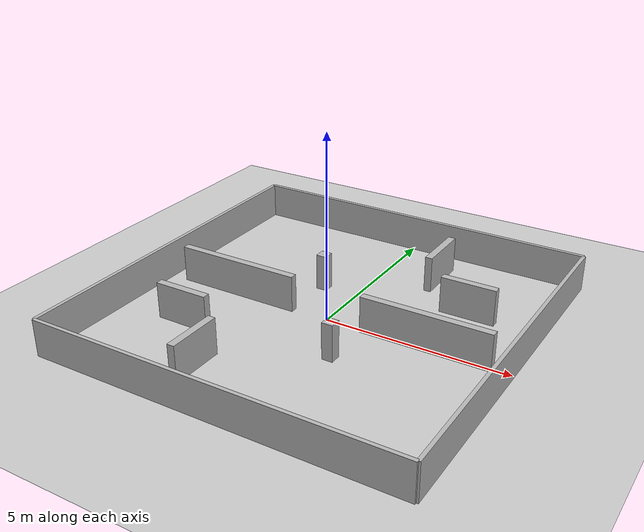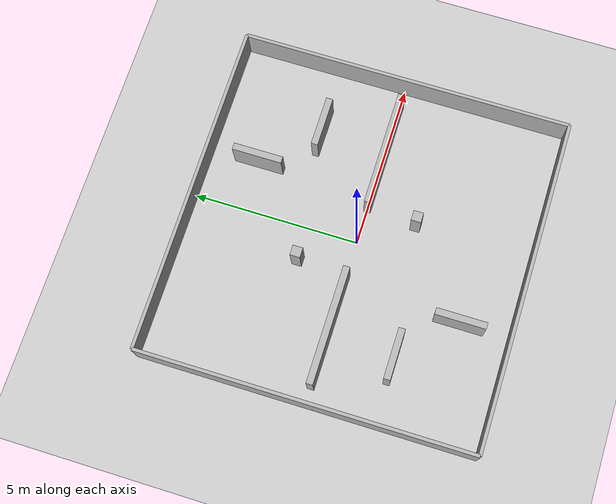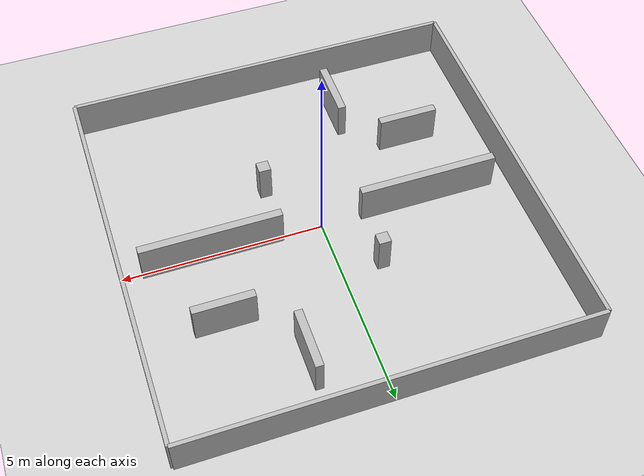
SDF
<?xml version="1.0" ?>
<sdf version="1.6">
  <world name="ctf_world">

    <include><uri>model://sun</uri></include>
    <include><uri>model://ground_plane</uri></include>

    <!-- Paredes exteriores 10x10 -->
    <model name="wall_north">
      <static>true</static><pose>0 5 0.5 0 0 0</pose>
      <link name="link">
        <collision name="col"><geometry><box><size>10 0.1 1</size></box></geometry></collision>
        <visual name="vis"><geometry><box><size>10 0.1 1</size></box></geometry></visual>
      </link>
    </model>
    <model name="wall_south">
      <static>true</static><pose>0 -5 0.5 0 0 0</pose>
      <link name="link">
        <collision name="col"><geometry><box><size>10 0.1 1</size></box></geometry></collision>
        <visual name="vis"><geometry><box><size>10 0.1 1</size></box></geometry></visual>
      </link>
    </model>
    <model name="wall_east">
      <static>true</static><pose>5 0 0.5 0 0 0</pose>
      <link name="link">
        <collision name="col"><geometry><box><size>0.1 10 1</size></box></geometry></collision>
        <visual name="vis"><geometry><box><size>0.1 10 1</size></box></geometry></visual>
      </link>
    </model>
    <model name="wall_west">
      <static>true</static><pose>-5 0 0.5 0 0 0</pose>
      <link name="link">
        <collision name="col"><geometry><box><size>0.1 10 1</size></box></geometry></collision>
        <visual name="vis"><geometry><box><size>0.1 10 1</size></box></geometry></visual>
      </link>
    </model>

    <!-- Pared central con hueco (dos segmentos) -->
    <model name="wall_center_left">
      <static>true</static><pose>-2.75 0 0.5 0 0 0</pose>
      <link name="link">
        <collision name="col"><geometry><box><size>3.5 0.2 1</size></box></geometry></collision>
        <visual name="vis"><geometry><box><size>3.5 0.2 1</size></box></geometry></visual>
      </link>
    </model>
    <model name="wall_center_right">
      <static>true</static><pose>2.75 0 0.5 0 0 0</pose>
      <link name="link">
        <collision name="col"><geometry><box><size>3.5 0.2 1</size></box></geometry></collision>
        <visual name="vis"><geometry><box><size>3.5 0.2 1</size></box></geometry></visual>
      </link>
    </model>

    <!-- Obstáculos zona robot1 (inferior izquierda) -->
    <model name="obs_1"><static>true</static><pose>-3 -2 0.5 0 0 0</pose>
      <link name="link">
        <collision name="col"><geometry><box><size>1.5 0.2 1</size></box></geometry></collision>
        <visual name="vis"><geometry><box><size>1.5 0.2 1</size></box></geometry></visual>
      </link>
    </model>
    <model name="obs_2"><static>true</static><pose>-1.5 -3.5 0.5 0 0 1.5707</pose>
      <link name="link">
        <collision name="col"><geometry><box><size>1.5 0.2 1</size></box></geometry></collision>
        <visual name="vis"><geometry><box><size>1.5 0.2 1</size></box></geometry></visual>
      </link>
    </model>

    <!-- Obstáculos zona robot2 (superior derecha) -->
    <model name="obs_3"><static>true</static><pose>3 2 0.5 0 0 0</pose>
      <link name="link">
        <collision name="col"><geometry><box><size>1.5 0.2 1</size></box></geometry></collision>
        <visual name="vis"><geometry><box><size>1.5 0.2 1</size></box></geometry></visual>
      </link>
    </model>
    <model name="obs_4"><static>true</static><pose>1.5 3.5 0.5 0 0 1.5707</pose>
      <link name="link">
        <collision name="col"><geometry><box><size>1.5 0.2 1</size></box></geometry></collision>
        <visual name="vis"><geometry><box><size>1.5 0.2 1</size></box></geometry></visual>
      </link>
    </model>

    <!-- Columnas centrales -->
    <model name="col_1"><static>true</static><pose>-1 1.5 0.5 0 0 0</pose>
      <link name="link">
        <collision name="col"><geometry><box><size>0.3 0.3 1</size></box></geometry></collision>
        <visual name="vis"><geometry><box><size>0.3 0.3 1</size></box></geometry></visual>
      </link>
    </model>
    <model name="col_2"><static>true</static><pose>1 -1.5 0.5 0 0 0</pose>
      <link name="link">
        <collision name="col"><geometry><box><size>0.3 0.3 1</size></box></geometry></collision>
        <visual name="vis"><geometry><box><size>0.3 0.3 1</size></box></geometry></visual>
      </link>
    </model>

    <!-- ctf_flag se spawnea dinámicamente desde ctf_demo.launch con posición
         configurable (ver arg flag_x / flag_y). -->

  </world>
</sdf>
